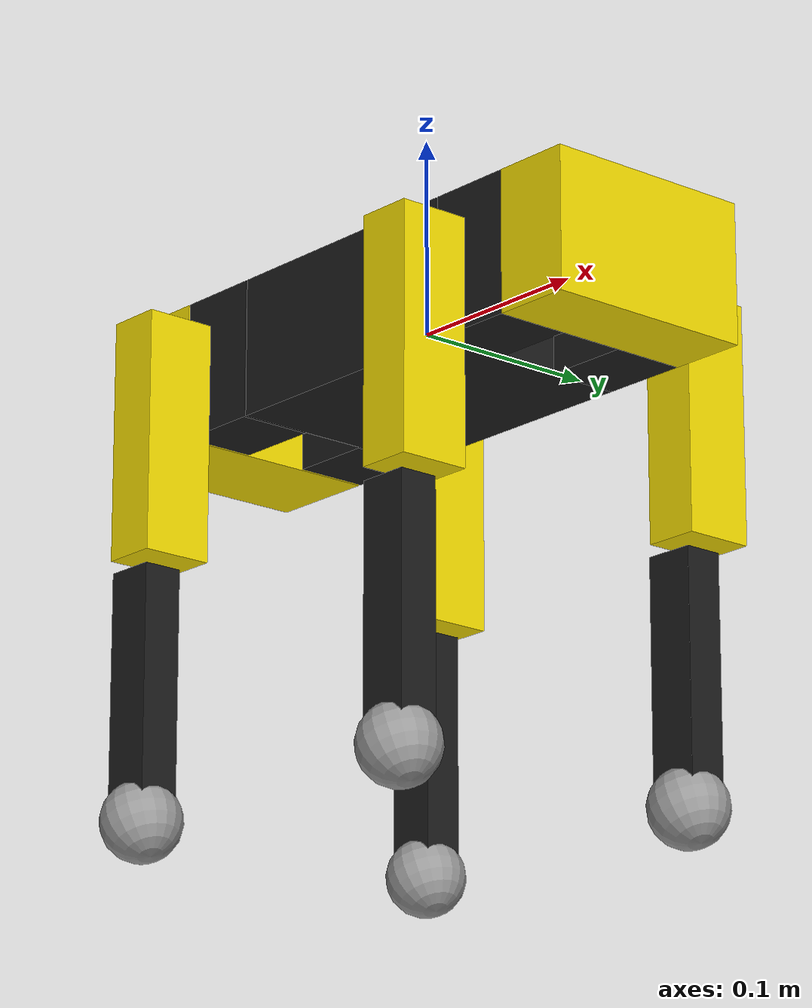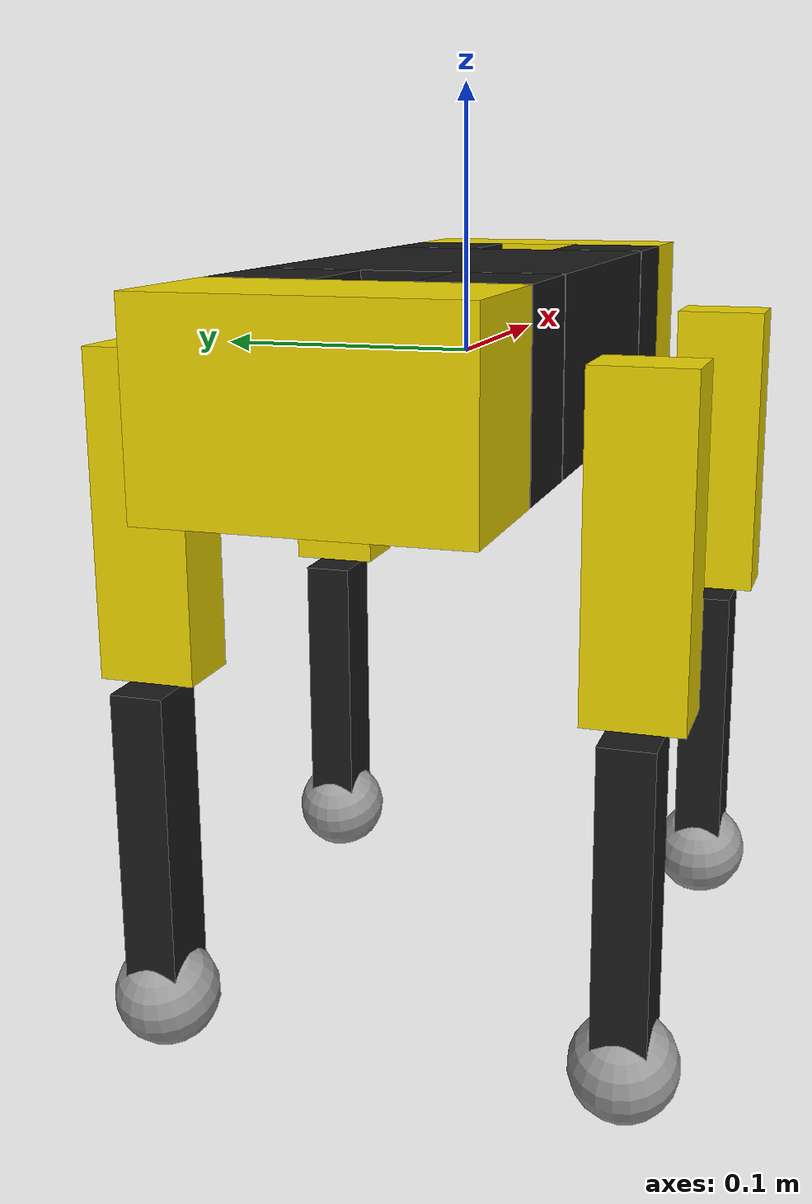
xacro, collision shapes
<?xml version="1.0"?>
<robot name="spot" xmlns:xacro="http://www.ros.org/wiki/xacro">

  <!-- Include Macros -->
  <xacro:include filename="$(find spotmicro_description)/urdf/spot_macro.xacro" />
  <xacro:include filename="$(find spotmicro_description)/urdf/transmissions.xacro" />

  <!-- Robot description -->
  <!-- Links -->
  <link name="base_footprint"/>

  <!-- MAIN BODY -->
  <xacro:mesh_link name="base_link"
              origin_rpy="0 0 0" origin_xyz="-0.045 -0.060 -0.015"
              i_rpy="0 0 0" i_xyz="0 0 0"
              mass="1.2"
              c_xyz="0 0 0"
              length="0.14"
              width="0.11"
              height="0.07"
              matname="black"
              meshfile="package://spotmicro_description/stl/mainbody.stl"
              meshscale="0.001 0.001 0.001" /> <!-- m to mm -->
  <!-- HEAD -->
  <xacro:mesh_link name="chassis_front_link"
              origin_rpy="0 0 0" origin_xyz="-0.040 -0.060 -0.0140"
              i_rpy="0 0 0" i_xyz="-0.145 0 0"
              mass="0.1"
              c_xyz="-0.145 0 0"
              length="0.058"
              width="0.11"
              height="0.07"
              matname="yellow"
              meshfile="package://spotmicro_description/stl/frontpart.stl"
              meshscale="0.001 0.001 0.001" />

  <!-- TAIL -->
  <xacro:mesh_link name="chassis_rear_link"
              origin_rpy="0 0 0" origin_xyz="-0.040 -0.060 -0.0140"
              i_rpy="0 0 0" i_xyz="0.135 0 0"
              mass="0.1"
              c_xyz="0.135 0 0"
              length="0.04"
              width="0.11"
              height="0.07"
              matname="yellow"
              meshfile="package://spotmicro_description/stl/backpart.stl"
              meshscale="0.001 0.001 0.001" />

  <!-- FRONT LEFT LEG -->
  <!-- SHOULDER -->
  <xacro:mesh_link name="front_left_shoulder_link"
              origin_rpy="0 0 0" origin_xyz="-0.135 -0.02 -0.01"
              i_rpy="0 0 0" i_xyz="0 0 0"
              mass="0.1"
              c_xyz="0 0 0"
              length="0.044"
              width="0.038"
              height="0.07"
              matname="black"
              meshfile="package://spotmicro_description/stl/lshoulder.stl"
              meshscale="0.001 0.001 0.001" />

  <!-- COVER -->
  <xacro:mesh_link name="front_left_leg_link_cover"
              origin_rpy="0 0 0" origin_xyz="-0.125 0.04 -0.02"
              i_rpy="0 0 0" i_xyz="0.0 0.0 -0.050"
              mass="0.005"
              c_xyz="0.0 0.0 -0.050"
              length="0.028"
              width="0.036"
              height="0.12"
              matname="yellow"
              meshfile="package://spotmicro_description/stl/larm_cover.stl"
              meshscale="0.001 0.001 0.001" />

  <!-- LEG -->
  <xacro:mesh_link name="front_left_leg_link"
              origin_rpy="0 0 0" origin_xyz="-0.125 0.04 -0.02"
              i_rpy="0 0 0" i_xyz="0.0 0.0 -0.050"
              mass="0.1"
              c_xyz="0.0 0.0 -0.050"
              length="0.028"
              width="0.036"
              height="0.12"
              matname="black"
              meshfile="package://spotmicro_description/stl/larm.stl"
              meshscale="0.001 0.001 0.001" />

  <!-- FOOT -->
  <xacro:mesh_link name="front_left_foot_link"
              origin_rpy="0 0 0" origin_xyz="-0.120 0.04 0.1"
              i_rpy="0 0 0" i_xyz="0.0 0.0 -0.050"
              mass="0.1"
              c_xyz="0.0 0.0 -0.050"
              length="0.026"
              width="0.02"
              height="0.115"
              matname="black"
              meshfile="package://spotmicro_description/stl/lfoot.stl"
              meshscale="0.001 0.001 0.001" />

<!-- TOE -->
  <xacro:mesh_link_sphere name="front_left_toe_link"
              origin_rpy="0 -0.40010 0" origin_xyz="0 -0.01 0"
              i_rpy="0 0 0" i_xyz="0 0 0"
              mass="0.005"
              c_xyz="0 0 0"
              length="0.02"
              width="0.02"
              height="0.02"
              radius="0.02"
              matname="grey"
              meshfile="package://spotmicro_description/stl/foot.stl"
              meshscale="0.001 0.001 0.001" />

  <!-- FRONT RIGHT LEG -->
  <!-- SHOULDER -->
  <xacro:mesh_link name="front_right_shoulder_link"
              origin_rpy="0 0 0" origin_xyz="-0.135 -0.09 -0.01"
              i_rpy="0 0 0" i_xyz="0 0 0"
              mass="0.1"
              c_xyz="0 0 0"
              length="0.044"
              width="0.038"
              height="0.07"
              matname="black"
              meshfile="package://spotmicro_description/stl/rshoulder.stl"
              meshscale="0.001 0.001 0.001" />

  <!-- COVER -->
  <xacro:mesh_link name="front_right_leg_link_cover"
              origin_rpy="0 0 0" origin_xyz="-0.125 -0.15 -0.02"
              i_rpy="0 0 0" i_xyz="0.0 0.0 -0.050"
              mass="0.005"
              c_xyz="0.0 0.0 -0.050"
              length="0.028"
              width="0.036"
              height="0.12"
              matname="yellow"
              meshfile="package://spotmicro_description/stl/rarm_cover.stl"
              meshscale="0.001 0.001 0.001" />

  <!-- LEG -->
  <xacro:mesh_link name="front_right_leg_link"
              origin_rpy="0 0 0" origin_xyz="-0.125 -0.15 -0.02"
              i_rpy="0 0 0" i_xyz="0.0 0.0 -0.050"
              mass="0.1"
              c_xyz="0.0 0.0 -0.050"
              length="0.028"
              width="0.036"
              height="0.12"
              matname="black"
              meshfile="package://spotmicro_description/stl/rarm.stl"
              meshscale="0.001 0.001 0.001" />

  <!-- FOOT -->
  <xacro:mesh_link name="front_right_foot_link"
              origin_rpy="0 0 0" origin_xyz="-0.120 -0.15 0.1"
              i_rpy="0 0 0" i_xyz="0.0 0.0 -0.050"
              mass="0.1"
              c_xyz="0.0 0.0 -0.050"
              length="0.026"
              width="0.02"
              height="0.115"
              matname="black"
              meshfile="package://spotmicro_description/stl/rfoot.stl"
              meshscale="0.001 0.001 0.001" />

<!-- TOE -->
  <xacro:mesh_link_sphere name="front_right_toe_link"
              origin_rpy="0 -0.40010 0" origin_xyz="0 -0.01 0"
              i_rpy="0 0 0" i_xyz="0 0 0"
              mass="0.005"
              c_xyz="0 0 0"
              length="0.02"
              width="0.02"
              height="0.02"
              radius="0.02"
              matname="grey"
              meshfile="package://spotmicro_description/stl/foot.stl"
              meshscale="0.001 0.001 0.001" />

  <!-- REAR LEFT LEG -->
  <!-- SHOULDER -->
  <xacro:mesh_link name="rear_left_shoulder_link"
              origin_rpy="0 0 0" origin_xyz="-0.135 -0.02 -0.01"
              i_rpy="0 0 0" i_xyz="0 0 0"
              mass="0.1"
              c_xyz="0 0 0"
              length="0.044"
              width="0.038"
              height="0.07"
              matname="black"
              meshfile="package://spotmicro_description/stl/lshoulder.stl"
              meshscale="0.001 0.001 0.001" />

  <!-- COVER -->
  <xacro:mesh_link name="rear_left_leg_link_cover"
              origin_rpy="0 0 0" origin_xyz="-0.125 0.04 -0.02"
              i_rpy="0 0 0" i_xyz="0.0 0.0 -0.050"
              mass="0.005"
              c_xyz="0.0 0.0 -0.050"
              length="0.028"
              width="0.036"
              height="0.12"
              matname="yellow"
              meshfile="package://spotmicro_description/stl/larm_cover.stl"
              meshscale="0.001 0.001 0.001" />

  <!-- LEG -->
  <xacro:mesh_link name="rear_left_leg_link"
              origin_rpy="0 0 0" origin_xyz="-0.125 0.04 -0.02"
              i_rpy="0 0 0" i_xyz="0.0 0.0 -0.050"
              mass="0.1"
              c_xyz="0.0 0.0 -0.050"
              length="0.028"
              width="0.036"
              height="0.12"
              matname="black"
              meshfile="package://spotmicro_description/stl/larm.stl"
              meshscale="0.001 0.001 0.001" />

  <!-- FOOT -->
  <xacro:mesh_link name="rear_left_foot_link"
              origin_rpy="0 0 0" origin_xyz="-0.120 0.04 0.1"
              i_rpy="0 0 0" i_xyz="0.0 0.0 -0.050"
              mass="0.1"
              c_xyz="0.0 0.0 -0.050"
              length="0.026"
              width="0.02"
              height="0.115"
              matname="black"
              meshfile="package://spotmicro_description/stl/lfoot.stl"
              meshscale="0.001 0.001 0.001" />

<!-- TOE -->
  <xacro:mesh_link_sphere name="rear_left_toe_link"
              origin_rpy="0 -0.40010 0" origin_xyz="0 -0.01 0"
              i_rpy="0 0 0" i_xyz="0 0 0"
              mass="0.005"
              c_xyz="0 0 0"
              length="0.02"
              width="0.02"
              height="0.02"
              radius="0.02"
              matname="grey"
              meshfile="package://spotmicro_description/stl/foot.stl"
              meshscale="0.001 0.001 0.001" />

  <!-- REAR RIGHT LEG -->
  <!-- SHOULDER -->
  <xacro:mesh_link name="rear_right_shoulder_link"
              origin_rpy="0 0 0" origin_xyz="-0.135 -0.09 -0.01"
              i_rpy="0 0 0" i_xyz="0 0 0"
              mass="0.1"
              c_xyz="0 0 0"
              length="0.044"
              width="0.038"
              height="0.07"
              matname="black"
              meshfile="package://spotmicro_description/stl/rshoulder.stl"
              meshscale="0.001 0.001 0.001" />

  <!-- COVER -->
  <xacro:mesh_link name="rear_right_leg_link_cover"
              origin_rpy="0 0 0" origin_xyz="-0.125 -0.15 -0.02"
              i_rpy="0 0 0" i_xyz="0.0 0.0 -0.050"
              mass="0.005"
              c_xyz="0.0 0.0 -0.050"
              length="0.028"
              width="0.036"
              height="0.12"
              matname="yellow"
              meshfile="package://spotmicro_description/stl/rarm_cover.stl"
              meshscale="0.001 0.001 0.001" />

  <!-- LEG -->
  <xacro:mesh_link name="rear_right_leg_link"
              origin_rpy="0 0 0" origin_xyz="-0.125 -0.15 -0.02"
              i_rpy="0 0 0" i_xyz="0.0 0.0 -0.050"
              mass="0.1"
              c_xyz="0.0 0.0 -0.050"
              length="0.028"
              width="0.036"
              height="0.12"
              matname="black"
              meshfile="package://spotmicro_description/stl/rarm.stl"
              meshscale="0.001 0.001 0.001" />

  <!-- FOOT -->
  <xacro:mesh_link name="rear_right_foot_link"
              origin_rpy="0 0 0" origin_xyz="-0.120 -0.15 0.1"
              i_rpy="0 0 0" i_xyz="0.0 0.0 -0.050"
              mass="0.15"
              c_xyz="0.0 0.0 -0.050"
              length="0.026"
              width="0.02"
              height="0.115"
              matname="black"
              meshfile="package://spotmicro_description/stl/rfoot.stl"
              meshscale="0.001 0.001 0.001" />

<!-- TOE -->
  <xacro:mesh_link_sphere name="rear_right_toe_link"
              origin_rpy="0 -0.40010 0" origin_xyz="0 -0.01 0"
              i_rpy="0 0 0" i_xyz="0 0 0"
              mass="0.005"
              c_xyz="0 0 0"
              length="0.02"
              width="0.02"
              height="0.02"
              radius="0.02"
              matname="grey"
              meshfile="package://spotmicro_description/stl/foot.stl"
              meshscale="0.001 0.001 0.001" />

  <!-- Joints -->
  <!-- MAIN BODY TO FOOTPRINT -->
  <xacro:frame_joint name="base_base" type="fixed"
                    origin_rpy="0 0 0" origin_xyz="0 0 0"
                    parent="base_footprint" child="base_link"/>

  <!-- BASE TO CHASSIS FRONT -->
  <xacro:frame_joint name="chassis_base_front" type="fixed"
                    origin_rpy="0 0 0" origin_xyz="0 0 0"
                    parent="base_link" child="chassis_front_link"/>

  <!-- BASE TO CHASSIS REAR -->
  <xacro:frame_joint name="chassis_base_rear" type="fixed"
                    origin_rpy="0 0 0" origin_xyz="0 0 0"
                    parent="base_link" child="chassis_rear_link"/>

  <!-- FRONT LEFT LEG -->
  <!-- SHOULDER TO BASE -->
  <xacro:rev_joint name="motor_front_left_shoulder" type="revolute"
                    axis_xyz="1 0 0"
                    origin_rpy="0 0 0" origin_xyz="-0.093 -0.036 0"
                    parent="base_link" child="front_left_shoulder_link"
                    effort="1000.0" velocity="0.7"
                    damping="0.0"
                    friction="0.0"
                    lower="-1.0"
                    upper="1.0"/>

  <!-- SHOULDER TO LEG -->
  <xacro:rev_joint name="motor_front_left_leg" type="revolute"
                    axis_xyz="0 1 0"
                    origin_rpy="0 0 0" origin_xyz="0 -0.052 0"
                    parent="front_left_shoulder_link" child="front_left_leg_link"
                    effort="1000.0" velocity="0.7"
                    damping="0.0"
                    friction="0.0"
                    lower="-2.17"
                    upper="0.97"/>

  <!-- LEG TO COVER -->
  <xacro:frame_joint name="front_left_leg_cover_joint" type="fixed"
                    origin_rpy="0 0 0" origin_xyz="0 0 0"
                    parent="front_left_leg_link" child="front_left_leg_link_cover"/>

  <!-- LEG TO FOOT -->
  <xacro:rev_joint name="foot_motor_front_left" type="revolute"
                    axis_xyz="0 1 0"
                    origin_rpy="0 0 0" origin_xyz="-0.01 0 -0.12"
                    parent="front_left_leg_link" child="front_left_foot_link"
                    effort="1000.0" velocity="0.7"
                    damping="0.0"
                    friction="0.0"
                    lower="-0.1"
                    upper="2.59"/>

  <!-- FOOT TO TOE -->
  <xacro:frame_joint name="front_left_toe" type="fixed"
                    origin_rpy="0 0 0" origin_xyz="0 0 -0.115"
                    parent="front_left_foot_link" child="front_left_toe_link"/>

  <!-- FRONT RIGHT LEG -->
  <!-- SHOULDER TO BASE -->
  <xacro:rev_joint name="motor_front_right_shoulder" type="revolute"
                    axis_xyz="1 0 0"
                    origin_rpy="0 0 0" origin_xyz="-0.093 0.036 0"
                    parent="base_link" child="front_right_shoulder_link"
                    effort="1000.0" velocity="0.7"
                    damping="0.0"
                    friction="0.0"
                    lower="-1.0"
                    upper="1.0"/>

  <!-- SHOULDER TO LEG -->
  <xacro:rev_joint name="motor_front_right_leg" type="revolute"
                    axis_xyz="0 1 0"
                    origin_rpy="0 0 0" origin_xyz="0 0.052 0"
                    parent="front_right_shoulder_link" child="front_right_leg_link"
                    effort="1000.0" velocity="0.7"
                    damping="0.0"
                    friction="0.0"
                    lower="-2.17"
                    upper="0.97"/>

  <!-- LEG TO COVER -->
  <xacro:frame_joint name="front_right_leg_cover_joint" type="fixed"
                    origin_rpy="0 0 0" origin_xyz="0 0 0"
                    parent="front_right_leg_link" child="front_right_leg_link_cover"/>

  <!-- LEG TO FOOT -->
  <xacro:rev_joint name="foot_motor_front_right" type="revolute"
                    axis_xyz="0 1 0"
                    origin_rpy="0 0 0" origin_xyz="-0.01 0 -0.12"
                    parent="front_right_leg_link" child="front_right_foot_link"
                    effort="1000.0" velocity="0.7"
                    damping="0.0"
                    friction="0.0"
                    lower="-0.1"
                    upper="2.59"/>

  <!-- FOOT TO TOE -->
  <xacro:frame_joint name="front_right_toe" type="fixed"
                    origin_rpy="0 0 0" origin_xyz="0 0 -0.115"
                    parent="front_right_foot_link" child="front_right_toe_link"/>

  <!-- REAR LEFT LEG -->
  <!-- SHOULDER TO BASE -->
  <xacro:rev_joint name="motor_rear_left_shoulder" type="revolute"
                    axis_xyz="1 0 0"
                    origin_rpy="0 0 0" origin_xyz="0.093 -0.036 0"
                    parent="base_link" child="rear_left_shoulder_link"
                    effort="1000.0" velocity="0.7"
                    damping="0.0"
                    friction="0.0"
                    lower="-1.0"
                    upper="1.0"/>

  <!-- SHOULDER TO LEG -->
  <xacro:rev_joint name="motor_rear_left_leg" type="revolute"
                    axis_xyz="0 1 0"
                    origin_rpy="0 0 0" origin_xyz="0 -0.052 0"
                    parent="rear_left_shoulder_link" child="rear_left_leg_link"
                    effort="1000.0" velocity="0.7"
                    damping="0.0"
                    friction="0.0"
                    lower="-2.17"
                    upper="0.97"/>

  <!-- LEG TO COVER -->
  <xacro:frame_joint name="rear_left_leg_cover_joint" type="fixed"
                    origin_rpy="0 0 0" origin_xyz="0 0 0"
                    parent="rear_left_leg_link" child="rear_left_leg_link_cover"/>

  <!-- LEG TO FOOT -->
  <xacro:rev_joint name="foot_motor_rear_left" type="revolute"
                    axis_xyz="0 1 0"
                    origin_rpy="0 0 0" origin_xyz="-0.01 0 -0.12"
                    parent="rear_left_leg_link" child="rear_left_foot_link"
                    effort="1000.0" velocity="0.7"
                    damping="0.0"
                    friction="0.0"
                    lower="-0.1"
                    upper="2.59"/>

  <!-- FOOT TO TOE -->
  <xacro:frame_joint name="rear_left_toe" type="fixed"
                    origin_rpy="0 0 0" origin_xyz="0 0 -0.115"
                    parent="rear_left_foot_link" child="rear_left_toe_link"/>

  <!-- REAR RIGHT LEG -->
  <!-- SHOULDER TO BASE -->
  <xacro:rev_joint name="motor_rear_right_shoulder" type="revolute"
                    axis_xyz="1 0 0"
                    origin_rpy="0 0 0" origin_xyz="0.093 0.036 0"
                    parent="base_link" child="rear_right_shoulder_link"
                    effort="1000.0" velocity="0.7"
                    damping="0.0"
                    friction="0.0"
                    lower="-1.0"
                    upper="1.0"/>

  <!-- SHOULDER TO LEG -->
  <xacro:rev_joint name="motor_rear_right_leg" type="revolute"
                    axis_xyz="0 1 0"
                    origin_rpy="0 0 0" origin_xyz="0 0.052 0"
                    parent="rear_right_shoulder_link" child="rear_right_leg_link"
                    effort="1000.0" velocity="0.7"
                    damping="0.0"
                    friction="0.0"
                    lower="-2.17"
                    upper="0.97"/>

  <!-- LEG TO COVER -->
  <xacro:frame_joint name="rear_right_leg_cover_joint" type="fixed"
                    origin_rpy="0 0 0" origin_xyz="0 0 0"
                    parent="rear_right_leg_link" child="rear_right_leg_link_cover"/>

  <!-- LEG TO FOOT -->
  <xacro:rev_joint name="foot_motor_rear_right" type="revolute"
                    axis_xyz="0 1 0"
                    origin_rpy="0 0 0" origin_xyz="-0.01 0 -0.12"
                    parent="rear_right_leg_link" child="rear_right_foot_link"
                    effort="1000.0" velocity="0.7"
                    damping="0.0"
                    friction="0.0"
                    lower="-0.1"
                    upper="2.59"/>

  <!-- FOOT TO TOE -->
  <xacro:frame_joint name="rear_right_toe" type="fixed"
                    origin_rpy="0 0 0" origin_xyz="0 0 -0.115"
                    parent="rear_right_foot_link" child="rear_right_toe_link"/>

</robot>

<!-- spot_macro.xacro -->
<robot xmlns:xacro="http://www.ros.org/wiki/xacro">

  <material name="yellow">
    <color rgba="0.92 0.83 0.0 1"/>
  </material>
  <material name="black">
    <color rgba="0.1 0.1 0.1 1"/>
  </material>
  <material name="grey">
    <color rgba="0.6 0.6 0.6 1"/>
  </material>

  <xacro:macro name="rev_joint" params="name type axis_xyz origin_rpy origin_xyz parent child effort velocity damping friction upper lower">
    <joint name="${name}" type="${type}">
      <axis xyz="${axis_xyz}" />
      <origin rpy="${origin_rpy}" xyz="${origin_xyz}" />
      <parent link="${parent}" />
      <child link="${child}" />
      <limit effort="${effort}" velocity="${velocity}" lower="${lower}" upper="${upper}"/>
      <joint_properties damping="${damping}" friction="${friction}" />
    </joint>
  </xacro:macro>

  <xacro:macro name="frame_joint" params="name type origin_rpy origin_xyz parent child">
    <joint name="${name}" type="${type}">
      <origin rpy="${origin_rpy}" xyz="${origin_xyz}" />
      <parent link="${parent}" />
      <child link="${child}" />
    </joint>
  </xacro:macro>

  <xacro:macro name="mesh_link" params="name origin_xyz origin_rpy meshfile meshscale c_xyz matname mass i_xyz i_rpy length width height">
    <link name="${name}">
      <visual>
        <origin rpy="${origin_rpy}" xyz="${origin_xyz}" />
        <geometry>
          <mesh filename="${meshfile}" scale="${meshscale}"/>
        </geometry>
        <material name="${matname}"/>
      </visual>

      <collision>
        <origin rpy="${origin_rpy}" xyz="${c_xyz}" />
        <geometry>
          <box size="${length} ${width} ${height}" />
        </geometry>
      </collision>

      <inertial>
        <mass value="${mass}" />
        <origin rpy="${i_rpy}" xyz="${i_xyz}" /> <!-- Inertial Axes -->
        <inertia ixx="${mass * (width * width + height * height)/12.0}" ixy="${0}" ixz="${0}" iyx="${0}" iyy="${mass * (length * length + height * height)/12.0}" iyz="${0}" izx="${0}" izy="${0}" izz="${mass * (length * length + width * width)/12.0}" />
      </inertial>
    </link>
  </xacro:macro>

  <xacro:macro name="mesh_link_sphere" params="name origin_xyz origin_rpy meshfile meshscale c_xyz matname mass i_xyz i_rpy length width height radius">
    <link name="${name}">
      <visual>
        <origin rpy="${origin_rpy}" xyz="${origin_xyz}" />
        <geometry>
          <mesh filename="${meshfile}" scale="${meshscale}"/>
        </geometry>
        <material name="${matname}"/>
      </visual>

      <collision>
        <origin rpy="${origin_rpy}" xyz="${c_xyz}" />
        <geometry>
          <sphere radius="${radius}"/>
        </geometry>
        <contact_coefficients mu="10.1"/>
      </collision>

      <inertial>
        <mass value="${mass}" />
        <origin rpy="${i_rpy}" xyz="${i_xyz}" /> <!-- Inertial Axes -->
        <inertia ixx="${mass * (width * width + height * height)/12.0}" ixy="${0}" ixz="${0}" iyx="${0}" iyy="${mass * (length * length + height * height)/12.0}" iyz="${0}" izx="${0}" izy="${0}" izz="${mass * (length * length + width * width)/12.0}" />
      </inertial>
    </link>
  </xacro:macro>

</robot>
